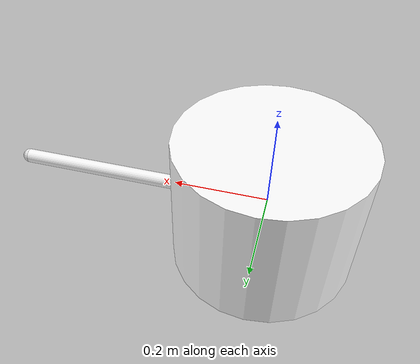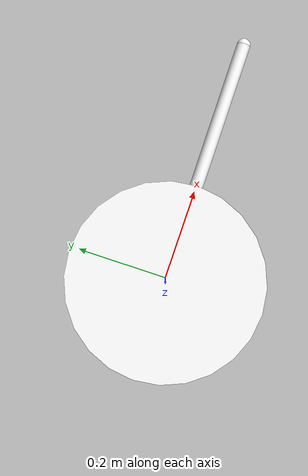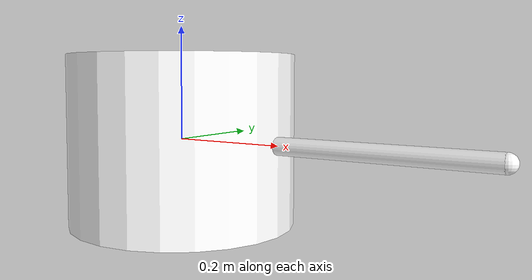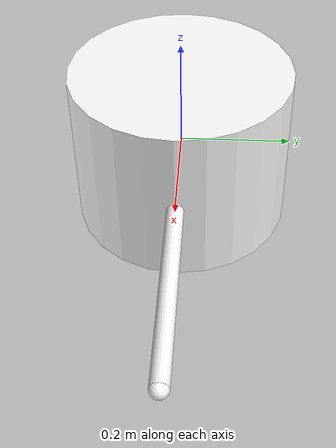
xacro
<?xml version="1.0"?>
<robot xmlns:xacro="http://www.ros.org/wiki/xacro" name="ouzel_raisim">

    <xacro:property name="mass_ouzel" value="5.0"/>
    <xacro:property name="ixx_ouzel" value="0.12"/>
    <xacro:property name="iyy_ouzel" value="0.14"/>
    <xacro:property name="izz_ouzel" value="0.18"/>
    <xacro:property name="radius_ouzel" value="0.2"/>
    <xacro:property name="height_ouzel" value="0.3"/>

    <link name="world"/>
    <link name="odom_omav"/>
    <joint name="odom_to_world" type="fixed">
        <parent link="world"/>
        <child link="odom_omav"/>
    </joint>

    <joint name="odom_to_omav_x" type="prismatic">
        <parent link="odom_omav"/>
        <child link="omav_x"/>
        <origin rpy="0 0 0" xyz="0.0 0.0 0.0"/>
        <axis xyz="1 0 0"/>
        <limit effort="1000.0" velocity="5.0" lower="-100" upper="100"/>
    </joint>

    <link name="omav_x"/>

    <joint name="omav_x_to_omav_y" type="prismatic">
        <parent link="omav_x"/>
        <child link="omav_y"/>
        <origin rpy="0 0 0" xyz="0.0 0.0 0.0"/>
        <axis xyz="0 1 0"/>
        <limit effort="1000.0" velocity="5.0" lower="-100" upper="100"/>
    </joint>

    <link name="omav_y"/>

    <joint name="omav_y_to_omav_z" type="prismatic">
        <parent link="omav_y"/>
        <child link="omav_z"/>
        <origin rpy="0 0 0" xyz="0.0 0.0 0.0"/>
        <axis xyz="0 0 1"/>
        <limit effort="1000.0" velocity="5.0" lower="-100" upper="100"/>
    </joint>

    <link name="omav_z"/>

    <joint name="omav_z_to_omav" type="spherical">
        <parent link="omav_z"/>
        <child link="omav"/>
        <origin rpy="0 0 0" xyz="0.0 0.0 0.0"/>
        <axis xyz="0 1 0"/>
    </joint>

    <link name="omav">
        <inertial>
            <mass value="${mass_ouzel}"/>
            <origin rpy="0 0 0" xyz="0 0 0"/>
            <inertia ixx="${ixx_ouzel}" ixy="0" ixz="0" iyy="${iyy_ouzel}" iyz="0" izz="${izz_ouzel}"/>
        </inertial>
        <collision>
            <origin rpy="0 0 0" xyz="0 0 0"/>
            <geometry>
                <cylinder radius="${radius_ouzel}" length="${height_ouzel}"/>
            </geometry>
        </collision>
        <visual>
            <origin rpy="0 0 0" xyz="0 0 0"/>
            <geometry>
                <cylinder radius="${radius_ouzel}" length="${height_ouzel}"/>
            </geometry>
            <material name="">
                <color rgba="1 1 1 1"/>
            </material>
        </visual>
    </link>

    <joint name="omav_to_rod" type="fixed">
        <parent link="omav"/>
        <child link="rod"/>
        <origin rpy="0 0 0" xyz="0.275 0.0 0.0"/>
    </joint>

    <link name="rod">
        <collision>
            <origin rpy="0 1.5708 0" xyz="0 0 0"/>
            <geometry>
                <cylinder radius="0.015" length="0.54"/>
            </geometry>
        </collision>
        <visual>
            <origin rpy="0 1.5708 0" xyz="0 0 0"/>
            <geometry>
                <cylinder radius="0.015" length="0.54"/>
            </geometry>
            <material name="">
                <color rgba="1 1 1 1"/>
            </material>
        </visual>
    </link>

    <joint name="rod_to_tip" type="fixed">
        <parent link="rod"/>
        <child link="tip"/>
        <origin rpy="0 0 0" xyz="0.27 0.0 0.0"/>
    </joint>

    <link name="tip">
        <collision>
            <origin rpy="0 0 0" xyz="0 0 0"/>
            <geometry>
                <sphere radius="0.015"/>
            </geometry>
            <material name="">
                <contact name="rubber"/>
            </material>
        </collision>
        <visual>
            <origin rpy="0 0 0" xyz="0 0.0 0"/>
            <geometry>
                <sphere radius="0.015"/>
            </geometry>
            <material name="">
                <color rgba="1 1 1 1"/>
            </material>
        </visual>
    </link>
</robot>
